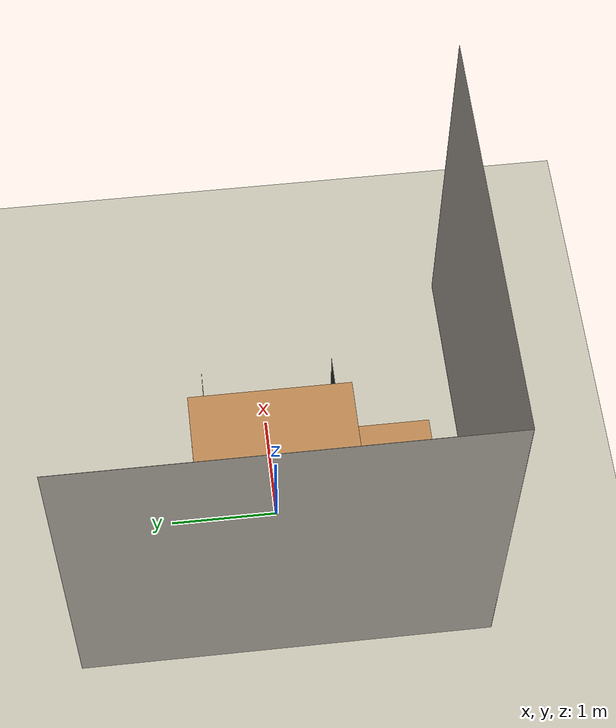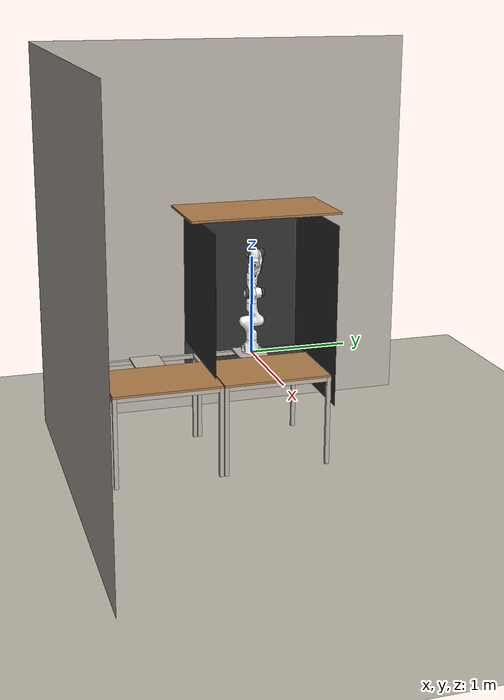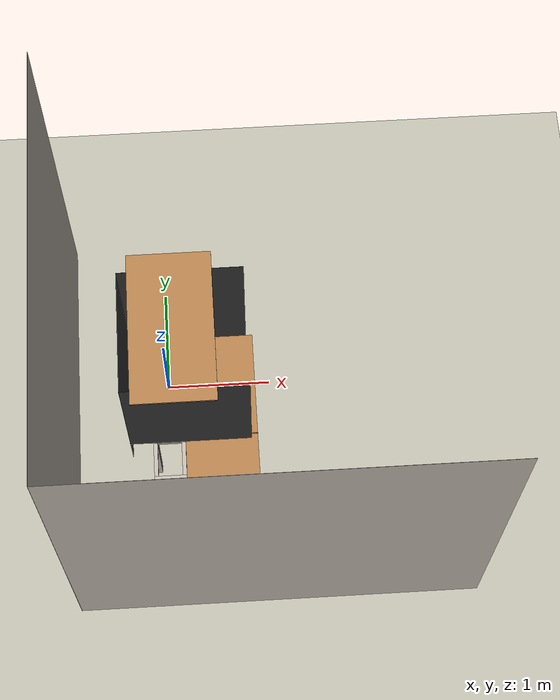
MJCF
<mujoco model="basic_scene">

  <include file="franka_emika_panda/panda_hand.xml"/>
  <option timestep=".002" noslip_iterations="5" noslip_tolerance="0"/>
  <statistic center="0.3 0 0.4" extent="1"/>

  <visual>
    <rgba haze="0.15 0.25 0.35 1"/>
    <quality shadowsize="8192"/>
    <global azimuth="120" elevation="-20"/>
     <headlight diffuse="0.6 0.6 0.6" ambient="0.3 0.3 0.3" specular="0 0 0"/>
  </visual>

  <option>
    <flag multiccd="enable"/>
  </option>

  <asset>
    <texture type="2d" name="groundplane" builtin="checker" mark="edge" rgb1="0.2 0.3 0.4" rgb2="0.1 0.2 0.3" markrgb="0.8 0.8 0.8" width="50" height="50"/>
    <material name="groundplane" texture="groundplane" texuniform="true"  reflectance="0.2"/>
    <texture name="table" file="textures/table.png" type="2d"/>
    <texture name="plywood" file="textures/plywood.png" type="2d"/>
    <material name="plywood" texture="plywood" specular="1" shininess="1"/>
    <texture name="brick_wall" file="textures/brick_wall.png" type="2d"/>
    <material name="brick_wall" texture="brick_wall" texuniform="true" specular="1" shininess="1"/>
    <texture name="aluminium" file="textures/aluminium.png" type="2d"/>
    <material name="aluminium" texture="aluminium" texuniform="true" specular="1" shininess="1"/>
  </asset>

  <worldbody>
    <body name="light0" pos="0 0 1.65">
      <light pos="0 0 0" dir="0 0 -1" directional="false" diffuse="0.3 0.3 0.3" ambient="0 0 0"/>
    </body>
    <geom name="floor" size="0 0 0.05" pos="0 0 -0.92" type="plane" rgba="0.74 0.73 0.67 1"/>
    <body name="roof" pos="0.1 0 1.5">
      <geom name="roof" type="box" size="0.4 0.75 0.01" material="plywood"/>
    </body>
    <body name="back_wall" pos="-1 0 1.08" euler="0 1.57 1.57">
      <geom name="back_wall" type="plane" size="2 2 0.02" material="brick_wall"/>
    </body>
    <body name="side_wall" pos="1 -2 1.08" euler="-1.57 0 3.1416">
      <geom name="side_wall" type="plane" size="2 2 0.02" material="brick_wall"/>
    </body>
    <body name="back_curtain" pos="-0.4 0 0.55" euler="0 1.57 3.1416">
      <geom name="back_curtain" type="plane" size="0.9 0.6 0.02" rgba="0.2 0.2 0.2 1"/>
    </body>
    <body name="left_curtain" pos="0.2 -0.6 0.75" euler="-1.57 0 3.1416">
      <geom name="left_curtain" type="plane" size="0.6 0.7 0.02" rgba="0.2 0.2 0.2 1"/>
    </body>
    <body name="right_curtain" pos="0.2 0.6 0.55" euler="1.57 0 3.1416">
      <geom name="right_curtain" type="plane" size="0.6 0.9 0.02" rgba="0.2 0.2 0.2 1"/>
    </body>
    <body pos='-0.1575 -0.51 -0.92' euler='0 0 0'>
        <include file="workbench.xml"/>
    </body>
    <body pos='-0.1575 -1.58 -0.92' euler='0 0 0'>
        <include file="workbench_2.xml"/>
    </body>
  </worldbody>

</mujoco>

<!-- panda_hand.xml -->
<mujoco model="panda">
  <compiler angle="radian" meshdir="franka_emika_panda/assets" autolimits="true"/>

  <option integrator="implicitfast"/>

  <default>
    <default class="panda">
      <material specular="0.5" shininess="0.25"/>
      <joint armature="0.1" damping="1" axis="0 0 1" range="-2.8973 2.8973"/>

      <default class="finger">
        <joint axis="0 1 0" type="slide" range="0 0.04"/>
      </default>

      <default class="visual">
        <geom type="mesh" contype="0" conaffinity="0" group="2"/>
      </default>
      <default class="collision">
        <geom type="mesh" group="3"/>
        <default class="fingertip_pad_collision_1">
          <geom type="box" size="0.0085 0.004 0.0085" pos="0 0.0055 0.0445"/>
        </default>
        <default class="fingertip_pad_collision_2">
          <geom type="box" size="0.003 0.002 0.003" pos="0.0055 0.002 0.05"/>
        </default>
        <default class="fingertip_pad_collision_3">
          <geom type="box" size="0.003 0.002 0.003" pos="-0.0055 0.002 0.05"/>
        </default>
        <default class="fingertip_pad_collision_4">
          <geom type="box" size="0.003 0.002 0.0035" pos="0.0055 0.002 0.0395"/>
        </default>
        <default class="fingertip_pad_collision_5">
          <geom type="box" size="0.003 0.002 0.0035" pos="-0.0055 0.002 0.0395"/>
        </default>
      </default>
    </default>
  </default>

  <asset>
    <material class="panda" name="white" rgba="1 1 1 1"/>
    <material class="panda" name="off_white" rgba="0.901961 0.921569 0.929412 1"/>
    <material class="panda" name="black" rgba="0.25 0.25 0.25 1"/>
    <material class="panda" name="green" rgba="0 1 0 1"/>
    <material class="panda" name="light_blue" rgba="0.039216 0.541176 0.780392 1"/>

    <!-- Collision meshes -->
    <mesh name="link0_c" file="link0.stl"/>
    <mesh name="link1_c" file="link1.stl"/>
    <mesh name="link2_c" file="link2.stl"/>
    <mesh name="link3_c" file="link3.stl"/>
    <mesh name="link4_c" file="link4.stl"/>
    <mesh name="link5_c0" file="link5_collision_0.obj"/>
    <mesh name="link5_c1" file="link5_collision_1.obj"/>
    <mesh name="link5_c2" file="link5_collision_2.obj"/>
    <mesh name="link6_c" file="link6.stl"/>
    <mesh name="link7_c" file="link7.stl"/>
    <mesh name="hand_c" file="hand.stl"/>

    <!-- Visual meshes -->
    <mesh file="link0_0.obj"/>
    <mesh file="link0_1.obj"/>
    <mesh file="link0_2.obj"/>
    <mesh file="link0_3.obj"/>
    <mesh file="link0_4.obj"/>
    <mesh file="link0_5.obj"/>
    <mesh file="link0_7.obj"/>
    <mesh file="link0_8.obj"/>
    <mesh file="link0_9.obj"/>
    <mesh file="link0_10.obj"/>
    <mesh file="link0_11.obj"/>
    <mesh file="link1.obj"/>
    <mesh file="link2.obj"/>
    <mesh file="link3_0.obj"/>
    <mesh file="link3_1.obj"/>
    <mesh file="link3_2.obj"/>
    <mesh file="link3_3.obj"/>
    <mesh file="link4_0.obj"/>
    <mesh file="link4_1.obj"/>
    <mesh file="link4_2.obj"/>
    <mesh file="link4_3.obj"/>
    <mesh file="link5_0.obj"/>
    <mesh file="link5_1.obj"/>
    <mesh file="link5_2.obj"/>
    <mesh file="link6_0.obj"/>
    <mesh file="link6_1.obj"/>
    <mesh file="link6_2.obj"/>
    <mesh file="link6_3.obj"/>
    <mesh file="link6_4.obj"/>
    <mesh file="link6_5.obj"/>
    <mesh file="link6_6.obj"/>
    <mesh file="link6_7.obj"/>
    <mesh file="link6_8.obj"/>
    <mesh file="link6_9.obj"/>
    <mesh file="link6_10.obj"/>
    <mesh file="link6_11.obj"/>
    <mesh file="link6_12.obj"/>
    <mesh file="link6_13.obj"/>
    <mesh file="link6_14.obj"/>
    <mesh file="link6_15.obj"/>
    <mesh file="link6_16.obj"/>
    <mesh file="link7_0.obj"/>
    <mesh file="link7_1.obj"/>
    <mesh file="link7_2.obj"/>
    <mesh file="link7_3.obj"/>
    <mesh file="link7_4.obj"/>
    <mesh file="link7_5.obj"/>
    <mesh file="link7_6.obj"/>
    <mesh file="link7_7.obj"/>
    <mesh file="hand_0.obj"/>
    <mesh file="hand_1.obj"/>
    <mesh file="hand_2.obj"/>
    <mesh file="hand_3.obj"/>
    <mesh file="hand_4.obj"/>
    <mesh file="finger_0.obj"/>
    <mesh file="finger_1.obj"/>
  </asset>

  <worldbody>
    <light name="top" pos="0 0 2" mode="trackcom"/>
    <body name="link0" childclass="panda">
      <inertial mass="0.629769" pos="-0.041018 -0.00014 0.049974"
        fullinertia="0.00315 0.00388 0.004285 8.2904e-7 0.00015 8.2299e-6"/>
      <geom mesh="link0_0" material="off_white" class="visual"/>
      <geom mesh="link0_1" material="black" class="visual"/>
      <geom mesh="link0_2" material="off_white" class="visual"/>
      <geom mesh="link0_3" material="black" class="visual"/>
      <geom mesh="link0_4" material="off_white" class="visual"/>
      <geom mesh="link0_5" material="black" class="visual"/>
      <geom mesh="link0_7" material="white" class="visual"/>
      <geom mesh="link0_8" material="white" class="visual"/>
      <geom mesh="link0_9" material="black" class="visual"/>
      <geom mesh="link0_10" material="off_white" class="visual"/>
      <geom mesh="link0_11" material="white" class="visual"/>
      <geom mesh="link0_c" class="collision"/>
      <body name="link1" pos="0 0 0.333">
        <inertial mass="4.970684" pos="0.003875 0.002081 -0.04762"
          fullinertia="0.70337 0.70661 0.0091170 -0.00013900 0.0067720 0.019169"/>
        <joint name="joint1"/>
        <site name="joint1"/>
        <geom material="white" mesh="link1" class="visual"/>
        <geom mesh="link1_c" class="collision"/>
        <body name="link2" quat="1 -1 0 0">
          <inertial mass="0.646926" pos="-0.003141 -0.02872 0.003495"
            fullinertia="0.0079620 2.8110e-2 2.5995e-2 -3.925e-3 1.0254e-2 7.04e-4"/>
          <joint name="joint2" range="-1.7628 1.7628"/>
          <site name="joint2"/>
          <geom material="white" mesh="link2" class="visual"/>
          <geom mesh="link2_c" class="collision"/>
          <body name="link3" pos="0 -0.316 0" quat="1 1 0 0">
            <joint name="joint3"/>
            <site name="joint3"/>
            <inertial mass="3.228604" pos="2.7518e-2 3.9252e-2 -6.6502e-2"
              fullinertia="3.7242e-2 3.6155e-2 1.083e-2 -4.761e-3 -1.1396e-2 -1.2805e-2"/>
            <geom mesh="link3_0" material="white" class="visual"/>
            <geom mesh="link3_1" material="white" class="visual"/>
            <geom mesh="link3_2" material="white" class="visual"/>
            <geom mesh="link3_3" material="black" class="visual"/>
            <geom mesh="link3_c" class="collision"/>
            <body name="link4" pos="0.0825 0 0" quat="1 1 0 0">
              <inertial mass="3.587895" pos="-5.317e-2 1.04419e-1 2.7454e-2"
                fullinertia="2.5853e-2 1.9552e-2 2.8323e-2 7.796e-3 -1.332e-3 8.641e-3"/>
              <joint name="joint4" range="-3.0718 -0.0698"/>
              <site name="joint4"/>
              <geom mesh="link4_0" material="white" class="visual"/>
              <geom mesh="link4_1" material="white" class="visual"/>
              <geom mesh="link4_2" material="black" class="visual"/>
              <geom mesh="link4_3" material="white" class="visual"/>
              <geom mesh="link4_c" class="collision"/>
              <body name="link5" pos="-0.0825 0.384 0" quat="1 -1 0 0">
                <inertial mass="1.225946" pos="-1.1953e-2 4.1065e-2 -3.8437e-2"
                  fullinertia="3.5549e-2 2.9474e-2 8.627e-3 -2.117e-3 -4.037e-3 2.29e-4"/>
                <joint name="joint5"/>
                <site name="joint5"/>
                <geom mesh="link5_0" material="black" class="visual"/>
                <geom mesh="link5_1" material="white" class="visual"/>
                <geom mesh="link5_2" material="white" class="visual"/>
                <geom mesh="link5_c0" class="collision"/>
                <geom mesh="link5_c1" class="collision"/>
                <geom mesh="link5_c2" class="collision"/>
                <body name="link6" quat="1 1 0 0">
                  <inertial mass="1.666555" pos="6.0149e-2 -1.4117e-2 -1.0517e-2"
                    fullinertia="1.964e-3 4.354e-3 5.433e-3 1.09e-4 -1.158e-3 3.41e-4"/>
                  <joint name="joint6" range="-0.0175 3.7525"/>
                  <site name="joint6"/>
                  <geom mesh="link6_0" material="off_white" class="visual"/>
                  <geom mesh="link6_1" material="white" class="visual"/>
                  <geom mesh="link6_2" material="black" class="visual"/>
                  <geom mesh="link6_3" material="white" class="visual"/>
                  <geom mesh="link6_4" material="white" class="visual"/>
                  <geom mesh="link6_5" material="white" class="visual"/>
                  <geom mesh="link6_6" material="white" class="visual"/>
                  <geom mesh="link6_7" material="light_blue" class="visual"/>
                  <geom mesh="link6_8" material="light_blue" class="visual"/>
                  <geom mesh="link6_9" material="black" class="visual"/>
                  <geom mesh="link6_10" material="black" class="visual"/>
                  <geom mesh="link6_11" material="white" class="visual"/>
                  <geom mesh="link6_12" material="green" class="visual"/>
                  <geom mesh="link6_13" material="white" class="visual"/>
                  <geom mesh="link6_14" material="black" class="visual"/>
                  <geom mesh="link6_15" material="black" class="visual"/>
                  <geom mesh="link6_16" material="white" class="visual"/>
                  <geom mesh="link6_c" class="collision"/>
                  <body name="link7" pos="0.088 0 0" quat="1 1 0 0">
                    <inertial mass="7.35522e-01" pos="1.0517e-2 -4.252e-3 6.1597e-2"
                      fullinertia="1.2516e-2 1.0027e-2 4.815e-3 -4.28e-4 -1.196e-3 -7.41e-4"/>
                    <joint name="joint7"/>
                    <site name="joint7"/>
                    <geom mesh="link7_0" material="white" class="visual"/>
                    <geom mesh="link7_1" material="black" class="visual"/>
                    <geom mesh="link7_2" material="black" class="visual"/>
                    <geom mesh="link7_3" material="black" class="visual"/>
                    <geom mesh="link7_4" material="black" class="visual"/>
                    <geom mesh="link7_5" material="black" class="visual"/>
                    <geom mesh="link7_6" material="black" class="visual"/>
                    <geom mesh="link7_7" material="white" class="visual"/>
                    <geom mesh="link7_c" class="collision"/>
                    <body name="hand" pos="0 0 0.107" quat="0.9238795 0 0 -0.3826834">
                      <camera name="handcam_rgb" pos="-0.05 0.015 0" fovy="42.5" quat="0 1 -1 0"/>
                      <site name="attachment_site" quat="0 0 0 1"/>
                      <inertial mass="0.73" pos="-0.01 0 0.03" diaginertia="0.001 0.0025 0.0017"/>
                      <geom mesh="hand_0" material="off_white" class="visual"/>
                      <geom mesh="hand_1" material="black" class="visual"/>
                      <geom mesh="hand_2" material="black" class="visual"/>
                      <geom mesh="hand_3" material="white" class="visual"/>
                      <geom mesh="hand_4" material="off_white" class="visual"/>
                      <geom mesh="hand_c" class="collision"/>
                      <body name="pinch" pos="0 0 0.105">
                            <site name='pinch' rgba = "1 0 0 1" size="0.01" group="3"/>
                      </body>
                      <body name="left_finger" pos="0 0 0.0584">
                        <inertial mass="0.015" pos="0 0 0" diaginertia="2.375e-6 2.375e-6 7.5e-7"/>
                        <joint name="finger_joint1" class="finger"/>
                        <geom mesh="finger_0" material="off_white" class="visual"/>
                        <geom mesh="finger_1" material="black" class="visual"/>
                        <geom mesh="finger_0" class="collision"/>
                        <geom class="fingertip_pad_collision_1"/>
                        <geom class="fingertip_pad_collision_2"/>
                        <geom class="fingertip_pad_collision_3"/>
                        <geom class="fingertip_pad_collision_4"/>
                        <geom class="fingertip_pad_collision_5"/>
                      </body>
                      <body name="right_finger" pos="0 0 0.0584" quat="0 0 0 1">
                        <inertial mass="0.015" pos="0 0 0" diaginertia="2.375e-6 2.375e-6 7.5e-7"/>
                        <joint name="finger_joint2" class="finger"/>
                        <geom mesh="finger_0" material="off_white" class="visual"/>
                        <geom mesh="finger_1" material="black" class="visual"/>
                        <geom mesh="finger_0" class="collision"/>
                        <geom class="fingertip_pad_collision_1"/>
                        <geom class="fingertip_pad_collision_2"/>
                        <geom class="fingertip_pad_collision_3"/>
                        <geom class="fingertip_pad_collision_4"/>
                        <geom class="fingertip_pad_collision_5"/>
                      </body>
                    </body>
                  </body>
                </body>
              </body>
            </body>
          </body>
        </body>
      </body>
    </body>
  </worldbody>

  <tendon>
    <fixed name="split">
      <joint joint="finger_joint1" coef="0.5"/>
      <joint joint="finger_joint2" coef="0.5"/>
    </fixed>
  </tendon>

  <equality>
    <joint joint1="finger_joint1" joint2="finger_joint2" solimp="0.95 0.99 0.001" solref="0.005 1"/>
  </equality>

  <actuator>
    <motor class="panda" name="actuator1" joint="joint1" forcerange="-87 87"/>
    <motor class="panda" name="actuator2" joint="joint2" forcerange="-87 87"/>
    <motor class="panda" name="actuator3" joint="joint3" forcerange="-87 87"/>
    <motor class="panda" name="actuator4" joint="joint4" forcerange="-87 87"/>
    <motor class="panda" name="actuator5" joint="joint5" forcerange="-12 12"/>
    <motor class="panda" name="actuator6" joint="joint6" forcerange="-12 12"/>
    <motor class="panda" name="actuator7" joint="joint7" forcerange="-12 12"/>
    <general class="panda" name="fingers_actuator" tendon="split" forcerange="-100 100" ctrlrange="0 255" gainprm="0.01568627451 0 0" biasprm="0 -100 -10" dyntype="none" biastype="affine" gaintype="fixed"/>

    <!-- Remap original ctrlrange (0, 0.04) to (0, 255): 0.04 * 100 / 255 = 0.01568627451 -->
  </actuator>

  <sensor>
    <jointpos name="panda/joint1_pos" joint="joint1"/>
    <jointpos name="panda/joint2_pos" joint="joint2"/>
    <jointpos name="panda/joint3_pos" joint="joint3"/>
    <jointpos name="panda/joint4_pos" joint="joint4"/>
    <jointpos name="panda/joint5_pos" joint="joint5"/>
    <jointpos name="panda/joint6_pos" joint="joint6"/>
    <jointpos name="panda/joint7_pos" joint="joint7"/>

    <jointvel name="panda/joint1_vel" joint="joint1"/>
    <jointvel name="panda/joint2_vel" joint="joint2"/>
    <jointvel name="panda/joint3_vel" joint="joint3"/>
    <jointvel name="panda/joint4_vel" joint="joint4"/>
    <jointvel name="panda/joint5_vel" joint="joint5"/>
    <jointvel name="panda/joint6_vel" joint="joint6"/>
    <jointvel name="panda/joint7_vel" joint="joint7"/>

    <torque name="panda/joint1_torque" site="joint1"/>
    <torque name="panda/joint2_torque" site="joint2"/>
    <torque name="panda/joint3_torque" site="joint3"/>
    <torque name="panda/joint4_torque" site="joint4"/>
    <torque name="panda/joint5_torque" site="joint5"/>
    <torque name="panda/joint6_torque" site="joint6"/>
    <torque name="panda/joint7_torque" site="joint7"/>

    <force name="panda/wrist_force" site="attachment_site"/>

    <framepos name="pinch_pos" objtype="site" objname="pinch"/>
    <framequat name="pinch_quat" objtype="site" objname="pinch"/>
    <framelinvel name="pinch_vel" objtype="site" objname="pinch"/>
  </sensor>
</mujoco>

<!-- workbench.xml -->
<mujocoinclude>

    <geom name="back_right_leg"   type="box" pos="0 0 0.45" size="0.02 0.02 0.45" material="aluminium"/>
    <geom name="back_left_leg"    type="box" pos="0 1.02 0.45" size="0.02 0.02 0.45" material="aluminium"/>
    <geom name="front_right_leg"  type="box" pos="1.0 0 0.45" size="0.02 0.02 0.45" material="aluminium"/>
    <geom name="front_left_leg"   type="box" pos="1.0 1.02 0.45" size="0.02 0.02 0.45" material="aluminium"/>

    <geom name="black_cover"      type="box" pos="0.14 0.85 0.9" size="0.16 0.19 0.001" rgba="0.2 0.2 0.2 1"/>

    <geom name="lateral_bar_ftb_left"  type="box" pos="0.50 0 0.88" size="0.48 0.02 0.02" material="aluminium"/>
    <geom name="lateral_bar_ftb_right" type="box" pos="0.50 1.02 0.88" size="0.48 0.02 0.02" material="aluminium"/>

    <geom name="lateral_bar_ltr_front" type="box" pos="0 0.51 0.88" size="0.02 0.49 0.02" material="aluminium"/>
    <geom name="lateral_bar_ltr_back"  type="box" pos="1.0 0.51 0.88" size="0.02 0.49 0.02" material="aluminium"/>

    <geom name="lateral_bar_ltr_robot_support"   type="box" pos="0.28 0.51 0.88" size="0.02 0.49 0.02" material="aluminium"/>
    <geom name="lateral_bar_ltr_surface_support" type="box" pos="0.37 0.51 0.88" size="0.02 0.49 0.02" material="aluminium"/>
    <geom name="robot_base_plate" type="box" pos="0.14 0.50 0.91" size="0.16 0.15 0.01" material="aluminium"/>

    <geom name="tabletop" type="box" pos="0.661 0.510 0.91" euler="0 0 3.14159" size="0.359 0.530 0.01" rgba="0.5 0.5 0.5 1" material="plywood"/>

</mujocoinclude>

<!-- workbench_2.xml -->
<mujoco model="workbench_2">

    <geom name="back_right_leg_2"   type="box" pos="0 0 0.45" size="0.02 0.02 0.45" material="aluminium"/>
    <geom name="back_left_leg_2"    type="box" pos="0 1.02 0.45" size="0.02 0.02 0.45" material="aluminium"/>
    <geom name="front_right_leg_2"  type="box" pos="1.0 0 0.45" size="0.02 0.02 0.45" material="aluminium"/>
    <geom name="front_left_leg_2"   type="box" pos="1.0 1.02 0.45" size="0.02 0.02 0.45" material="aluminium"/>

    <geom name="lateral_bar_ftb_left_2"  type="box" pos="0.50 0 0.88" size="0.48 0.02 0.02" material="aluminium"/>
    <geom name="lateral_bar_ftb_right_2" type="box" pos="0.50 1.02 0.88" size="0.48 0.02 0.02" material="aluminium"/>

    <geom name="lateral_bar_ltr_front_2" type="box" pos="0 0.51 0.88" size="0.02 0.49 0.02" material="aluminium"/>
    <geom name="lateral_bar_ltr_back_2"  type="box" pos="1.0 0.51 0.88" size="0.02 0.49 0.02" material="aluminium"/>

    <geom name="lateral_bar_ltr_robot_support_2"   type="box" pos="0.28 0.51 0.88" size="0.02 0.49 0.02" material="aluminium"/>
    <geom name="lateral_bar_ltr_surface_support_2" type="box" pos="0.37 0.51 0.88" size="0.02 0.49 0.02" material="aluminium"/>
    <geom name="robot_base_plate_2" type="box" pos="0.14 0.50 0.91" size="0.16 0.15 0.01" material="aluminium"/>

    <geom name="tabletop_2" type="box" pos="0.661 0.510 0.91" euler="0 0 3.14159" size="0.359 0.530 0.01" rgba="0.5 0.5 0.5 1" material="plywood"/>

</mujoco>
